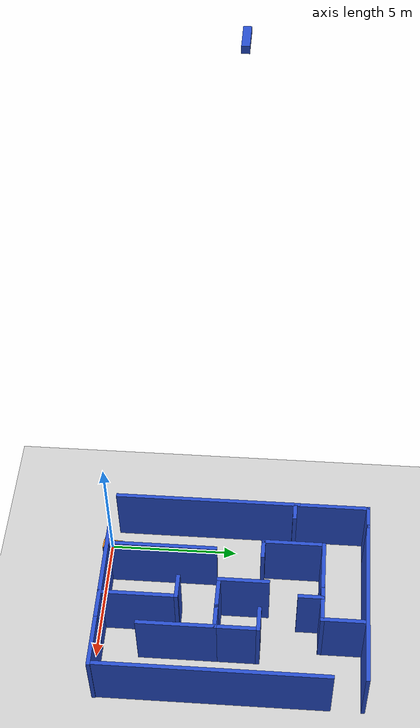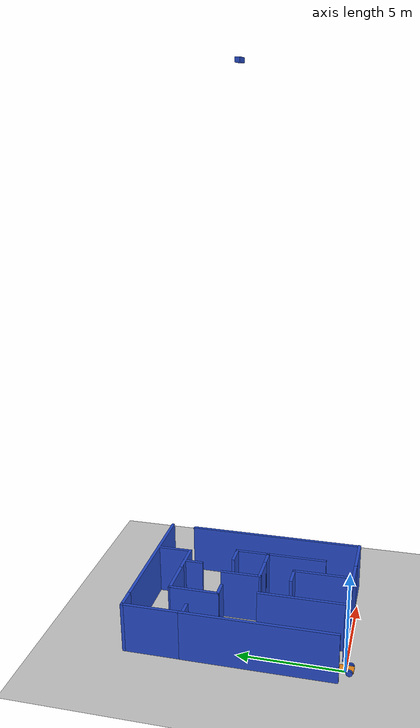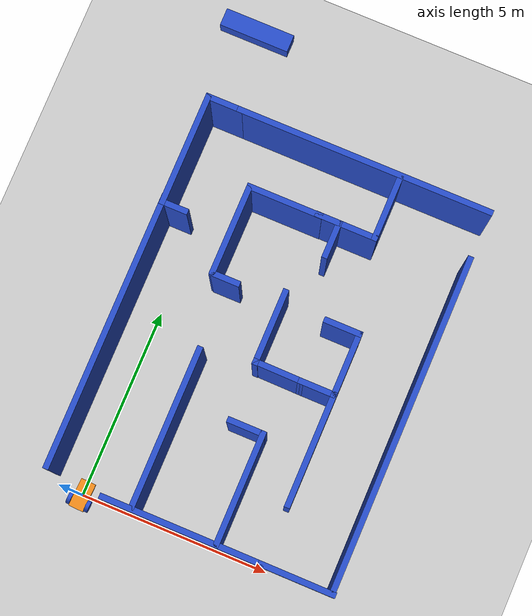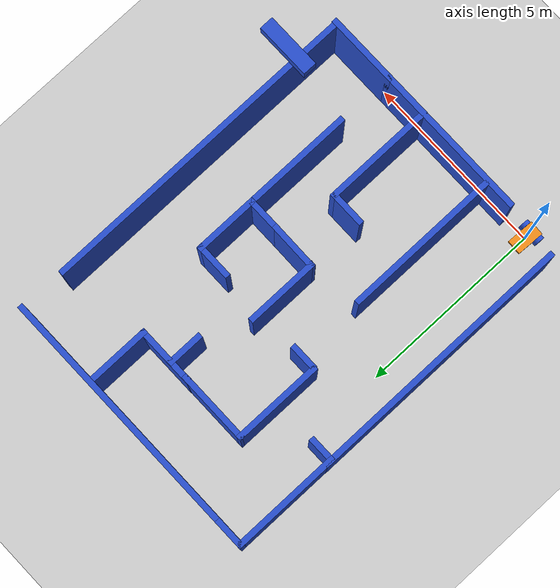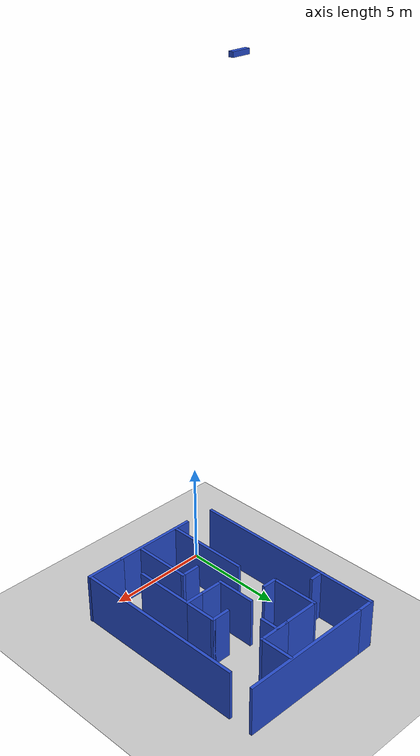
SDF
<sdf version="1.7">
 <world name="default">
  <light name="sun" type="directional">
   <pose>0 0 10 0 -0 0</pose>
   <diffuse>0.8 0.8 0.8 1</diffuse>
   <specular>0.2 0.2 0.2 1</specular>
   <attenuation>
    <range>1000</range>
    <constant>0.9</constant>
    <linear>0.01</linear>
    <quadratic>0.001</quadratic>
   </attenuation>
   <direction>-0.5 0.1 -0.9</direction>
   <spot><inner_angle>0</inner_angle><outer_angle>0</outer_angle><falloff>0</falloff></spot>
  </light>
  <model name="ground_plane">
   <static>1</static>
   <link name="link">
    <collision name="collision">
     <geometry><plane><normal>0 0 1</normal><size>100 100</size></plane></geometry>
     <surface><friction><ode><mu>100</mu><mu2>50</mu2></ode></friction></surface>
    </collision>
    <visual name="visual">
     <cast_shadows>0</cast_shadows>
     <geometry><plane><normal>0 0 1</normal><size>100 100</size></plane></geometry>
     <material>
      <script><uri>file://media/materials/scripts/gazebo.material</uri><name>Gazebo/Grey</name></script>
     </material>
    </visual>
   </link>
  </model>
  <gravity>0 0 -9.8</gravity>
  <magnetic_field>6e-06 2.3e-05 -4.2e-05</magnetic_field>
  <atmosphere type="adiabatic"/>
  <physics type="ode">
   <max_step_size>0.001</max_step_size>
   <real_time_factor>1</real_time_factor>
   <real_time_update_rate>1000</real_time_update_rate>
  </physics>
  <scene><ambient>0.4 0.4 0.4 1</ambient><background>0.7 0.7 0.7 1</background><shadows>0</shadows></scene>
  <spherical_coordinates>
   <surface_model>EARTH_WGS84</surface_model>
   <latitude_deg>0</latitude_deg>
   <longitude_deg>0</longitude_deg>
   <elevation>0</elevation>
   <heading_deg>0</heading_deg>
  </spherical_coordinates>
  <model name="Maze">
   <pose>2.94361 5.1356 0 0 -0 0</pose>
   <link name="Wall_21">
    <collision name="Wall_21_Collision">
     <geometry><box><size>4.25 0.15 2.5</size></box></geometry>
     <pose>0 0 1.25 0 -0 0</pose>
    </collision>
    <visual name="Wall_21_Visual">
     <pose>0 0 1.25 0 -0 0</pose>
     <geometry><box><size>4.25 0.15 2.5</size></box></geometry>
     <material>
      <script><uri>file://media/materials/scripts/gazebo.material</uri><name>Gazebo/Blue</name></script>
      <ambient>0.996078 0.47451 0.0196078 1</ambient>
     </material>
     <meta><layer>0</layer></meta>
    </visual>
    <pose>-0.166584 -4.99211 0 0 -0 0</pose>
   </link>
   <link name="Wall_23">
    <collision name="Wall_23_Collision">
     <geometry><box><size>4.25 0.15 2.5</size></box></geometry>
     <pose>0 0 1.25 0 -0 0</pose>
    </collision>
    <visual name="Wall_23_Visual">
     <pose>0 0 1.25 0 -0 0</pose>
     <geometry><box><size>4.25 0.15 2.5</size></box></geometry>
     <material>
      <script><uri>file://media/materials/scripts/gazebo.material</uri><name>Gazebo/Blue</name></script>
      <ambient>0 0 0 1</ambient>
     </material>
     <meta><layer>0</layer></meta>
    </visual>
    <pose>-1.47697 -2.88891 0 0 -0 1.5708</pose>
   </link>
   <link name="Wall_25">
    <collision name="Wall_25_Collision">
     <geometry><box><size>7.25 0.15 2.5</size></box></geometry>
     <pose>0 0 1.25 0 -0 0</pose>
    </collision>
    <visual name="Wall_25_Visual">
     <pose>0 0 1.25 0 -0 0</pose>
     <geometry><box><size>7.25 0.15 2.5</size></box></geometry>
     <material>
      <script><uri>file://media/materials/scripts/gazebo.material</uri><name>Gazebo/Blue</name></script>
      <ambient>0.996078 0.47451 0.0196078 1</ambient>
     </material>
     <meta><layer>0</layer></meta>
    </visual>
    <pose>-3.73341 -1.28759 0 0 -0 1.5708</pose>
   </link>
   <link name="Wall_30">
    <collision name="Wall_30_Collision">
     <geometry><box><size>0.75 0.15 2.5</size></box></geometry>
     <pose>0 0 1.25 0 -0 0</pose>
    </collision>
    <visual name="Wall_30_Visual">
     <pose>0 0 1.25 0 -0 0</pose>
     <geometry><box><size>0.75 0.15 2.5</size></box></geometry>
     <material>
      <script><uri>file://media/materials/scripts/gazebo.material</uri><name>Gazebo/Blue</name></script>
      <ambient>0 0 0 1</ambient>
     </material>
     <meta><layer>0</layer></meta>
    </visual>
    <pose>-1.56741 0.99221 0 0 -0 0</pose>
   </link>
   <link name="Wall_34">
    <collision name="Wall_34_Collision">
     <geometry><box><size>1.3428 0.15 2.5</size></box></geometry>
     <pose>0 0 1.25 0 -0 0</pose>
    </collision>
    <visual name="Wall_34_Visual">
     <pose>0 0 1.25 0 -0 0</pose>
     <geometry><box><size>1.3428 0.15 2.5</size></box></geometry>
     <material>
      <script><uri>file://media/materials/scripts/gazebo.material</uri><name>Gazebo/Blue</name></script>
      <ambient>0 0 0 1</ambient>
     </material>
     <meta><layer>0</layer></meta>
    </visual>
    <pose>0.487086 -0.59755 0 0 -0 -0.009643</pose>
   </link>
   <link name="Wall_35">
    <collision name="Wall_35_Collision">
     <geometry><box><size>1 0.15 2.5</size></box></geometry>
     <pose>0 0 1.25 0 -0 0</pose>
    </collision>
    <visual name="Wall_35_Visual">
     <pose>0 0 1.25 0 -0 0</pose>
     <geometry><box><size>1 0.15 2.5</size></box></geometry>
     <material>
      <script><uri>file://media/materials/scripts/gazebo.material</uri><name>Gazebo/Blue</name></script>
      <ambient>0 0 0 1</ambient>
     </material>
     <meta><layer>0</layer></meta>
    </visual>
    <pose>1.50837 -0.6033 0 0 -0 0</pose>
   </link>
   <link name="Wall_36">
    <collision name="Wall_36_Collision">
     <geometry><box><size>1.75 0.15 2.5</size></box></geometry>
     <pose>0 0 1.25 0 -0 0</pose>
    </collision>
    <visual name="Wall_36_Visual">
     <pose>0 0 1.25 0 -0 0</pose>
     <geometry><box><size>1.75 0.15 2.5</size></box></geometry>
     <material>
      <script><uri>file://media/materials/scripts/gazebo.material</uri><name>Gazebo/Blue</name></script>
      <ambient>0 0 0 1</ambient>
     </material>
     <meta><layer>0</layer></meta>
    </visual>
    <pose>1.93337 0.1967 0 0 -0 1.5708</pose>
   </link>
   <link name="Wall_37">
    <collision name="Wall_37_Collision">
     <geometry><box><size>1 0.15 2.5</size></box></geometry>
     <pose>0 0 1.25 0 -0 0</pose>
    </collision>
    <visual name="Wall_37_Visual">
     <pose>0 0 1.25 0 -0 0</pose>
     <geometry><box><size>1 0.15 2.5</size></box></geometry>
     <material>
      <script><uri>file://media/materials/scripts/gazebo.material</uri><name>Gazebo/Blue</name></script>
      <ambient>0 0 0 1</ambient>
     </material>
     <meta><layer>0</layer></meta>
    </visual>
    <pose>1.50837 0.9967 0 0 -0 3.14159</pose>
   </link>
   <link name="Wall_39">
    <collision name="Wall_39_Collision">
     <geometry><box><size>3 0.15 2.5</size></box></geometry>
     <pose>0 0 1.25 0 -0 0</pose>
    </collision>
    <visual name="Wall_39_Visual">
     <pose>0 0 1.25 0 -0 0</pose>
     <geometry><box><size>3 0.15 2.5</size></box></geometry>
     <material>
      <script><uri>file://media/materials/scripts/gazebo.material</uri><name>Gazebo/Blue</name></script>
      <ambient>0 0 0 1</ambient>
     </material>
     <meta><layer>0</layer></meta>
    </visual>
    <pose>1.93337 -2.0283 0 0 -0 -1.5708</pose>
   </link>
   <link name="Wall_41">
    <collision name="Wall_41_Collision">
     <geometry><box><size>3 0.15 2.5</size></box></geometry>
     <pose>0 0 1.25 0 -0 0</pose>
    </collision>
    <visual name="Wall_41_Visual">
     <pose>0 0 1.25 0 -0 0</pose>
     <geometry><box><size>3 0.15 2.5</size></box></geometry>
     <material>
      <script><uri>file://media/materials/scripts/gazebo.material</uri><name>Gazebo/Blue</name></script>
      <ambient>0 0 0 1</ambient>
     </material>
     <meta><layer>0</layer></meta>
    </visual>
    <pose>0.727679 -3.55281 0 0 -0 1.5708</pose>
   </link>
   <link name="Wall_43">
    <collision name="Wall_43_Collision">
     <geometry><box><size>1 0.15 2.5</size></box></geometry>
     <pose>0 0 1.25 0 -0 0</pose>
    </collision>
    <visual name="Wall_43_Visual">
     <pose>0 0 1.25 0 -0 0</pose>
     <geometry><box><size>1 0.15 2.5</size></box></geometry>
     <material>
      <script><uri>file://media/materials/scripts/gazebo.material</uri><name>Gazebo/Blue</name></script>
      <ambient>0 0 0 1</ambient>
     </material>
     <meta><layer>0</layer></meta>
    </visual>
    <pose>0.302679 -2.12782 0 0 -0 3.14159</pose>
   </link>
   <link name="Wall_46">
    <collision name="Wall_46_Collision">
     <geometry><box><size>1.64061 0.15 2.5</size></box></geometry>
     <pose>0 0 1.25 0 -0 0</pose>
    </collision>
    <visual name="Wall_46_Visual">
     <pose>0 0 1.25 0 -0 0</pose>
     <geometry><box><size>1.64061 0.15 2.5</size></box></geometry>
     <material>
      <script><uri>file://media/materials/scripts/gazebo.material</uri><name>Gazebo/Blue</name></script>
      <ambient>0 0 0 1</ambient>
     </material>
     <meta><layer>0</layer></meta>
    </visual>
    <pose>0.633461 3.31645 0 0 -0 0</pose>
   </link>
   <link name="Wall_52">
    <collision name="Wall_52_Collision">
     <geometry><box><size>2.44702 0.15 2.5</size></box></geometry>
     <pose>0 0 1.25 0 -0 0</pose>
    </collision>
    <visual name="Wall_52_Visual">
     <pose>0 0 1.25 0 -0 0</pose>
     <geometry><box><size>2.44702 0.15 2.5</size></box></geometry>
     <material>
      <script><uri>file://media/materials/scripts/gazebo.material</uri><name>Gazebo/Blue</name></script>
      <ambient>0 0 0 1</ambient>
     </material>
     <meta><layer>0</layer></meta>
    </visual>
    <pose>-1.91791 2.16081 0 0 -0 1.56844</pose>
   </link>
   <link name="Wall_53">
    <collision name="Wall_53_Collision">
     <geometry><box><size>2 0.15 2.5</size></box></geometry>
     <pose>0 0 1.25 0 -0 0</pose>
    </collision>
    <visual name="Wall_53_Visual">
     <pose>0 0 1.25 0 -0 0</pose>
     <geometry><box><size>2 0.15 2.5</size></box></geometry>
     <material>
      <script><uri>file://media/materials/scripts/gazebo.material</uri><name>Gazebo/Blue</name></script>
      <ambient>0 0 0 1</ambient>
     </material>
     <meta><layer>0</layer></meta>
    </visual>
    <pose>-0.99021 3.30921 0 0 -0 0</pose>
   </link>
   <link name="Wall_61">
    <collision name="Wall_61_Collision">
     <geometry><box><size>1 0.15 2.5</size></box></geometry>
     <pose>0 0 1.25 0 -0 0</pose>
    </collision>
    <visual name="Wall_61_Visual">
     <pose>0 0 1.25 0 -0 0</pose>
     <geometry><box><size>1 0.15 2.5</size></box></geometry>
     <material>
      <script><uri>file://media/materials/scripts/gazebo.material</uri><name>Gazebo/Blue</name></script>
      <ambient>0.996078 0.47451 0.0196078 1</ambient>
     </material>
     <meta><layer>0</layer></meta>
    </visual>
    <pose>-3.30144 4.99211 0 0 -0 3.14159</pose>
   </link>
   <link name="Wall_63">
    <collision name="Wall_63_Collision">
     <geometry><box><size>3 0.15 2.5</size></box></geometry>
     <pose>0 0 1.25 0 -0 0</pose>
    </collision>
    <visual name="Wall_63_Visual">
     <pose>0 0 1.25 0 -0 0</pose>
     <geometry><box><size>3 0.15 2.5</size></box></geometry>
     <material>
      <script><uri>file://media/materials/scripts/gazebo.material</uri><name>Gazebo/Blue</name></script>
      <ambient>0.996078 0.47451 0.0196078 1</ambient>
     </material>
     <meta><layer>0</layer></meta>
    </visual>
    <pose>-3.72644 3.56711 0 0 -0 -1.5708</pose>
   </link>
   <link name="Wall_65">
    <collision name="Wall_65_Collision">
     <geometry><box><size>6.75 0.15 2.5</size></box></geometry>
     <pose>0 0 1.25 0 -0 0</pose>
    </collision>
    <visual name="Wall_65_Visual">
     <pose>0 0 1.25 0 -0 0</pose>
     <geometry><box><size>6.75 0.15 2.5</size></box></geometry>
     <material>
      <script><uri>file://media/materials/scripts/gazebo.material</uri><name>Gazebo/Blue</name></script>
      <ambient>0.996078 0.47451 0.0196078 1</ambient>
     </material>
     <meta><layer>0</layer></meta>
    </visual>
    <pose>0.42356 4.99211 0 0 -0 0</pose>
   </link>
   <link name="Wall_67">
    <collision name="Wall_67_Collision">
     <geometry><box><size>8.75 0.15 2.5</size></box></geometry>
     <pose>0 0 1.25 0 -0 0</pose>
    </collision>
    <visual name="Wall_67_Visual">
     <pose>0 0 1.25 0 -0 0</pose>
     <geometry><box><size>8.75 0.15 2.5</size></box></geometry>
     <material>
      <script><uri>file://media/materials/scripts/gazebo.material</uri><name>Gazebo/Blue</name></script>
      <ambient>0.996078 0.47451 0.0196078 1</ambient>
     </material>
     <meta><layer>0</layer></meta>
    </visual>
    <pose>3.70855 -0.575644 0 0 -0 -1.5708</pose>
   </link>
   <link name="Wall_69">
    <collision name="Wall_69_Collision">
     <geometry><box><size>2 0.15 2.5</size></box></geometry>
     <pose>0 0 1.25 0 -0 0</pose>
    </collision>
    <visual name="Wall_69_Visual">
     <pose>0 0 1.25 0 -0 0</pose>
     <geometry><box><size>2 0.15 2.5</size></box></geometry>
     <material>
      <script><uri>file://media/materials/scripts/gazebo.material</uri><name>Gazebo/Blue</name></script>
      <ambient>0.996078 0.47451 0.0196078 1</ambient>
     </material>
     <meta><layer>0</layer></meta>
    </visual>
    <pose>2.80842 -4.99211 0 0 -0 0</pose>
   </link>
   <link name="Wall_71">
    <collision name="Wall_71_Collision">
     <geometry><box><size>0.75 0.15 2.5</size></box></geometry>
     <pose>0 0 1.25 0 -0 0</pose>
    </collision>
    <visual name="Wall_71_Visual">
     <pose>0 0 1.25 0 -0 0</pose>
     <geometry><box><size>0.75 0.15 2.5</size></box></geometry>
     <material>
      <script><uri>file://media/materials/scripts/gazebo.material</uri><name>Gazebo/Blue</name></script>
      <ambient>0 0 0 1</ambient>
     </material>
     <meta><layer>0</layer></meta>
    </visual>
    <pose>-3.42644 2.14211 0 0 -0 0</pose>
   </link>
   <link name="Wall_73">
    <collision name="Wall_73_Collision">
     <geometry><box><size>2 0.15 2.5</size></box></geometry>
     <pose>0 0 1.25 0 -0 0</pose>
    </collision>
    <visual name="Wall_73_Visual">
     <pose>0 0 1.25 0 -0 0</pose>
     <geometry><box><size>2 0.15 2.5</size></box></geometry>
     <material>
      <script><uri>file://media/materials/scripts/gazebo.material</uri><name>Gazebo/Blue</name></script>
      <ambient>0 0 0 1</ambient>
     </material>
     <meta><layer>0</layer></meta>
    </visual>
    <pose>-0.109202 0.3217 0 0 -0 1.5708</pose>
   </link>
   <link name="Wall_79">
    <collision name="Wall_79_Collision">
     <geometry><box><size>1.75 0.15 2.5</size></box></geometry>
     <pose>0 0 1.25 0 -0 0</pose>
    </collision>
    <visual name="Wall_79_Visual">
     <pose>0 0 1.25 0 -0 0</pose>
     <geometry><box><size>1.75 0.15 2.5</size></box></geometry>
     <material>
      <script><uri>file://media/materials/scripts/gazebo.material</uri><name>Gazebo/Blue</name></script>
      <ambient>0 0 0 1</ambient>
     </material>
     <meta><layer>0</layer></meta>
    </visual>
    <pose>1.37874 4.11646 0 0 -0 1.5708</pose>
   </link>
   <link name="Wall_81">
    <collision name="Wall_81_Collision">
     <geometry><box><size>1 0.15 2.5</size></box></geometry>
     <pose>0 0 1.25 0 -0 0</pose>
    </collision>
    <visual name="Wall_81_Visual">
     <pose>0 0 1.25 0 -0 0</pose>
     <geometry><box><size>1 0.15 2.5</size></box></geometry>
     <material>
      <script><uri>file://media/materials/scripts/gazebo.material</uri><name>Gazebo/Blue</name></script>
      <ambient>0 0 0 1</ambient>
     </material>
     <meta><layer>0</layer></meta>
    </visual>
    <pose>0.438493 2.88286 0 0 -0 -1.5708</pose>
   </link>
   <static>1</static>
  </model>
  <model name="satellite">
   <link name="link_0">
    <inertial>
     <mass>1</mass>
     <inertia>
      <ixx>0.166667</ixx>
      <ixy>0</ixy>
      <ixz>0</ixz>
      <iyy>0.166667</iyy>
      <iyz>0</iyz>
      <izz>0.166667</izz>
     </inertia>
    </inertial>
    <pose>0 2e-06 4.4e-05 0 -0 0</pose>
    <visual name="visual">
     <geometry><box><size>0.8 0.2 0.2</size></box></geometry>
     <material>
      <lighting>1</lighting>
      <script><uri>file://media/materials/scripts/gazebo.material</uri><name>Gazebo/Blue</name></script>
      <shader type="pixel"><normal_map>__default__</normal_map></shader>
      <ambient>0.3 0.3 0.3 1</ambient>
      <diffuse>0.7 0.7 0.7 1</diffuse>
      <specular>0.01 0.01 0.01 1</specular>
      <emissive>0 0 0 1</emissive>
     </material>
     <cast_shadows>0</cast_shadows>
    </visual>
    <collision name="collision">
     <geometry><box><size>0.8 0.2 0.2</size></box></geometry>
     <surface>
      <friction>
       <ode><mu>1</mu><mu2>1</mu2><fdir1>0 0 0</fdir1><slip1>0</slip1><slip2>0</slip2></ode>
       <torsional>
        <coefficient>1</coefficient>
        <patch_radius>0</patch_radius>
        <surface_radius>0</surface_radius>
        <use_patch_radius>1</use_patch_radius>
        <ode><slip>0</slip></ode>
       </torsional>
      </friction>
      <bounce><restitution_coefficient>0</restitution_coefficient><threshold>1e+06</threshold></bounce>
      <contact>
       <collide_without_contact>0</collide_without_contact>
       <collide_without_contact_bitmask>1</collide_without_contact_bitmask>
       <collide_bitmask>1</collide_bitmask>
       <ode>
        <soft_cfm>0</soft_cfm>
        <soft_erp>0.2</soft_erp>
        <kp>1e+13</kp>
        <kd>1</kd>
        <max_vel>0.01</max_vel>
        <min_depth>0</min_depth>
       </ode>
       <bullet>
        <split_impulse>1</split_impulse>
        <split_impulse_penetration_threshold>-0.01</split_impulse_penetration_threshold>
        <soft_cfm>0</soft_cfm>
        <soft_erp>0.2</soft_erp>
        <kp>1e+13</kp>
        <kd>1</kd>
       </bullet>
      </contact>
     </surface>
    </collision>
    <sensor name="upper_camera" type="camera">
     <pose>0 0 0 0 1.57 0</pose>
     <update_rate>30</update_rate>
     <visualize>1</visualize>
     <camera name="head">
      <horizontal_fov>1.0856</horizontal_fov>
      <image><width>1280</width><height>720</height><format>R8G8B8</format></image>
      <clip><near>0.03</near><far>100</far></clip>
      <noise><type>gaussian</type><mean>0</mean><stddev>0.007</stddev></noise>
     </camera>
     <plugin name="camera_controller_upper" filename="libgazebo_ros_camera.so">
      <alwaysOn>1</alwaysOn>
      <updateRate>0.0</updateRate>
      <cameraName>rrbot/camera1</cameraName>
      <imageTopicName>image_raw</imageTopicName>
      <cameraInfoTopicName>camera_info</cameraInfoTopicName>
      <frameName>camera_link</frameName>
      <hackBaseline>0.07</hackBaseline>
      <distortionK1>0.0</distortionK1>
      <distortionK2>0.0</distortionK2>
      <distortionK3>0.0</distortionK3>
      <distortionT1>0.0</distortionT1>
      <distortionT2>0.0</distortionT2>
     </plugin>
    </sensor>
   </link>
   <static>1</static>
   <pose>2.7 5.4 25.4 0 -0 0</pose>
  </model>
  <audio><device>default</device></audio>
  <model name="mazebot">
   <link name="base_footprint">
    <inertial>
     <pose>-0.16 0 0.04 0 -0 0</pose>
     <mass>2</mass>
     <inertia>
      <ixx>0.0232</ixx>
      <ixy>0</ixy>
      <ixz>0.0128</ixz>
      <iyy>0.0744</iyy>
      <iyz>0</iyz>
      <izz>0.0712</izz>
     </inertia>
    </inertial>
    <collision name="base_footprint_collision">
     <geometry><box><size>0.75 0.4 0.1</size></box></geometry>
    </collision>
    <collision name="base_footprint_fixed_joint_lump__laser_collision_1">
     <pose>-0.32 0 0.08 0 -0 3.14</pose>
     <geometry><sphere><radius>0.08</radius></sphere></geometry>
    </collision>
    <visual name="base_footprint_visual">
     <geometry><box><size>0.75 0.4 0.1</size></box></geometry>
     <material>
      <script><name>Gazebo/Orange</name><uri>file://media/materials/scripts/gazebo.material</uri></script>
     </material>
    </visual>
    <visual name="base_footprint_fixed_joint_lump__camera_link_visual_1">
     <pose>-0.32 0 0.14 0 -0 0</pose>
     <geometry><box><size>0.05 0.04 0.05</size></box></geometry>
     <material>
      <script><name>Gazebo/Blue</name><uri>file://media/materials/scripts/gazebo.material</uri></script>
     </material>
    </visual>
    <visual name="base_footprint_fixed_joint_lump__laser_visual_2">
     <pose>-0.32 0 0.08 0 -0 3.14</pose>
     <geometry><cylinder><length>0.05</length><radius>0.05</radius></cylinder></geometry>
    </visual>
    <sensor name="Botcamera" type="camera">
     <update_rate>30</update_rate>
     <camera name="head">
      <horizontal_fov>1.39626</horizontal_fov>
      <image><width>800</width><height>800</height><format>R8G8B8</format></image>
      <clip><near>0.02</near><far>300</far></clip>
      <noise><type>gaussian</type><mean>0</mean><stddev>0.007</stddev></noise>
     </camera>
     <plugin name="camera_controller" filename="libgazebo_ros_camera.so">
      <alwaysOn>1</alwaysOn>
      <updateRate>0.0</updateRate>
      <cameraName>/Botcamera</cameraName>
      <imageTopicName>image_raw</imageTopicName>
      <cameraInfoTopicName>camera_info</cameraInfoTopicName>
      <frameName>camera_link</frameName>
      <hackBaseline>0.07</hackBaseline>
     </plugin>
     <pose>-0.32 0 0.14 0 -0 0</pose>
    </sensor>
    <sensor name="laser" type="ray">
     <visualize>1</visualize>
     <update_rate>40</update_rate>
     <ray>
      <scan>
       <horizontal>
        <samples>720</samples>
        <resolution>1</resolution>
        <min_angle>-1.578</min_angle>
        <max_angle>1.578</max_angle>
       </horizontal>
       <vertical><samples>1</samples><min_angle>0</min_angle><max_angle>0</max_angle></vertical>
      </scan>
      <range><min>0.1</min><max>5</max><resolution>0.1</resolution></range>
     </ray>
     <plugin name="Lidar" filename="libgazebo_ros_laser.so">
      <topicName>/scan</topicName>
      <frameName>laser</frameName>
     </plugin>
     <pose>-0.32 0 0.08 0 -0 3.14</pose>
    </sensor>
   </link>
   <joint name="caster_joint" type="revolute">
    <pose relative_to="base_footprint">-0.3 0 -0.07 0 -0 0</pose>
    <parent>base_footprint</parent>
    <child>caster</child>
    <axis>
     <xyz>0 0 1</xyz>
     <limit><lower>-1e+16</lower><upper>1e+16</upper></limit>
     <dynamics><spring_reference>0</spring_reference><spring_stiffness>0</spring_stiffness></dynamics>
    </axis>
   </joint>
   <link name="caster">
    <pose relative_to="caster_joint">0 0 0 0 -0 0</pose>
    <inertial>
     <mass>1</mass>
     <inertia><ixx>0.01</ixx><ixy>0</ixy><ixz>0</ixz><iyy>0.01</iyy><iyz>0</iyz><izz>0.01</izz></inertia>
    </inertial>
    <collision name="caster_collision"><geometry><sphere><radius>0.08</radius></sphere></geometry></collision>
    <visual name="caster_visual">
     <geometry><sphere><radius>0.08</radius></sphere></geometry>
     <material>
      <script><name>Gazebo/Black</name><uri>file://media/materials/scripts/gazebo.material</uri></script>
     </material>
    </visual>
   </link>
   <joint name="wheel_left_joint" type="revolute">
    <pose relative_to="base_footprint">0.2 -0.25 0 1.57 -0 0</pose>
    <parent>base_footprint</parent>
    <child>wheel_left_link</child>
    <axis>
     <xyz>0 0 1</xyz>
     <limit><lower>-1e+16</lower><upper>1e+16</upper></limit>
     <dynamics><spring_reference>0</spring_reference><spring_stiffness>0</spring_stiffness></dynamics>
    </axis>
   </joint>
   <link name="wheel_left_link">
    <pose relative_to="wheel_left_joint">0 0 0 0 -0 0</pose>
    <inertial>
     <mass>2</mass>
     <inertia><ixx>0.01</ixx><ixy>0</ixy><ixz>0</ixz><iyy>0.01</iyy><iyz>0</iyz><izz>0.01</izz></inertia>
    </inertial>
    <collision name="wheel_left_link_collision">
     <geometry><cylinder><length>0.1</length><radius>0.15</radius></cylinder></geometry>
    </collision>
    <visual name="wheel_left_link_visual">
     <geometry><cylinder><length>0.1</length><radius>0.15</radius></cylinder></geometry>
     <material>
      <script><name>Gazebo/Blue</name><uri>file://media/materials/scripts/gazebo.material</uri></script>
     </material>
    </visual>
   </link>
   <joint name="wheel_right_joint" type="revolute">
    <pose relative_to="base_footprint">0.2 0.25 0 1.57 -0 0</pose>
    <parent>base_footprint</parent>
    <child>wheel_right_link</child>
    <axis>
     <xyz>0 0 1</xyz>
     <limit><lower>-1e+16</lower><upper>1e+16</upper></limit>
     <dynamics><spring_reference>0</spring_reference><spring_stiffness>0</spring_stiffness></dynamics>
    </axis>
   </joint>
   <link name="wheel_right_link">
    <pose relative_to="wheel_right_joint">0 0 0 0 -0 0</pose>
    <inertial>
     <mass>2</mass>
     <inertia><ixx>0.01</ixx><ixy>0</ixy><ixz>0</ixz><iyy>0.01</iyy><iyz>0</iyz><izz>0.01</izz></inertia>
    </inertial>
    <collision name="wheel_right_link_collision">
     <geometry><cylinder><length>0.1</length><radius>0.15</radius></cylinder></geometry>
    </collision>
    <visual name="wheel_right_link_visual">
     <geometry><cylinder><length>0.1</length><radius>0.15</radius></cylinder></geometry>
     <material>
      <script><name>Gazebo/Blue</name><uri>file://media/materials/scripts/gazebo.material</uri></script>
     </material>
    </visual>
   </link>
   <plugin name="differential_drive_controller" filename="libgazebo_ros_diff_drive.so">
    <update_rate>20</update_rate>
    <left_joint>wheel_left_joint</left_joint>
    <right_joint>wheel_right_joint</right_joint>
    <wheel_separation>0.25</wheel_separation>
    <wheel_diameter>0.07</wheel_diameter>
    <wheelAcceleration>1.0</wheelAcceleration>
    <wheelTorque>20</wheelTorque>
    <commandTopic>cmd_vel</commandTopic>
    <odometryTopic>odom</odometryTopic>
    <odometry_frame>odom</odometry_frame>
    <robotBaseFrame>base_footprint</robotBaseFrame>
    <odometrySource>1</odometrySource>
    <publishWheelTF>1</publishWheelTF>
    <publish_odom>1</publish_odom>
    <publish_odom_tf>1</publish_odom_tf>
    <publishWheelJointState>1</publishWheelJointState>
    <legacyMode>0</legacyMode>
   </plugin>
   <static>0</static>
   <plugin name="joint_state_publisher" filename="libgazebo_ros_joint_state_publisher.so">
    <joint_name>caster_joint</joint_name>
    <update_rate>20</update_rate>
   </plugin>
   <pose>0.00318 -0.000447 0.15002 1.1e-05 -8.3e-05 -1.61604</pose>
  </model>
 </world>
</sdf>
